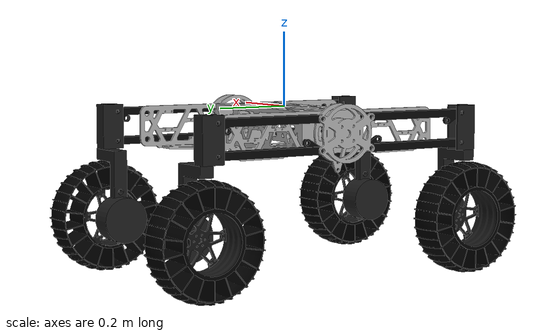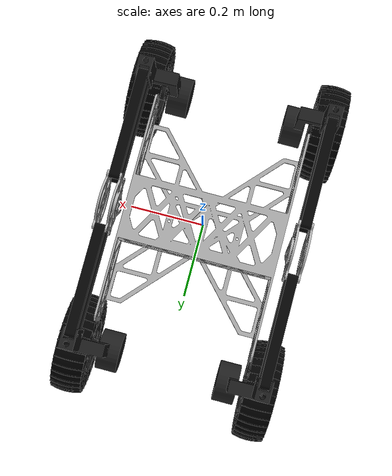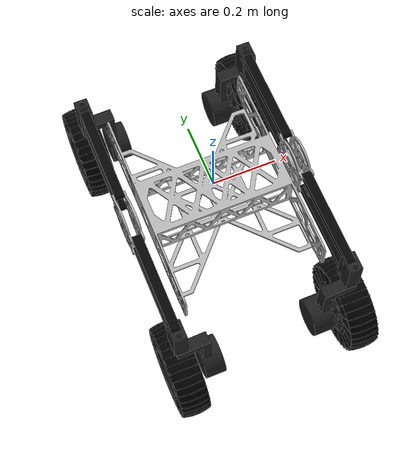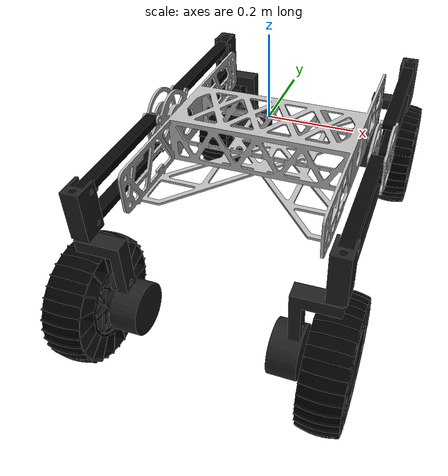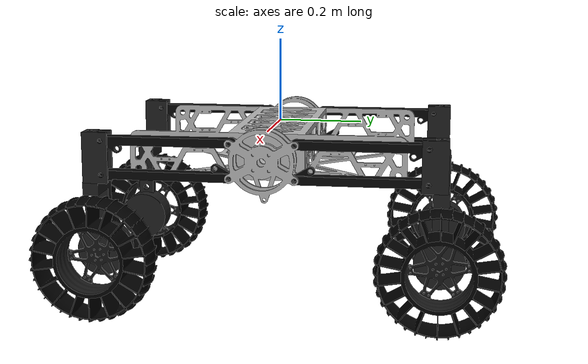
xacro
<robot xmlns:xacro="http://www.ros.org/wiki/xacro" name="robot_name">
    <link name="base_link" />

    <xacro:include filename="$(find rover_description)/urdf/rover_movement/rover_movement.xacro"/>

    <joint name="base_link_to_chassis" type="fixed">
        <parent link="base_link"/>
        <child link="chassis_link"/>
        <origin xyz="0 0 ${-chassis_height/2}" rpy="0 0 0"/>
    </joint>
</robot>

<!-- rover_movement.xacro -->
<robot name="rover_base"
    xmlns:xacro="http://ros.org/wiki/xacro">

    <xacro:include filename="$(find rover_description)/urdf/rover_movement/utils/params.xacro"/>
    <xacro:include filename="$(find rover_description)/urdf/rover_movement/utils/macros.xacro"/>

    <link name="chassis_link">
        <visual>
            <origin rpy="0 0 0" xyz="0 0 0"/>
            <geometry>
                <mesh filename="package://rover_description/urdf/rover_movement/meshes/chassis.dae"/>
            </geometry>
        </visual>
    </link>

    <xacro:swaypivot name="l" lr="${left}" />
    <xacro:swaypivot name="r" lr="${right}" />

    <joint name="l_swaypivot_joint" type="revolute">
        <parent link="chassis_link"/>
        <child link="l_swaypivot_link"/>
        <origin xyz="${1*(chassis_width/2 + sway_pivot_depth/2 + sway_pivot_gap)} 0.0 0.0" rpy="0 0 0"/>
        <axis xyz="1.0 0.0 0.0"/>
        <limit effort="1000" velocity="1000" lower="${-pi * 0.25}" upper="${pi * 0.25}"/>
    </joint>

    <joint name="r_swaypivot_joint" type="revolute">
        <parent link="chassis_link"/>
        <child link="r_swaypivot_link"/>
        <origin xyz="${-1*(chassis_width/2 + sway_pivot_depth/2 + sway_pivot_gap)} 0.0 0.0" rpy="0 0 0"/>
        <axis xyz="1.0 0.0 0.0"/>
        <limit effort="1000" velocity="1000" lower="${-pi * 0.25}" upper="${pi * 0.25}"/>
        <mimic joint="l_swaypivot_joint" multiplier="-1" offset="0"/>
    </joint>

    <xacro:leg sway="r" name="fr" fb="${front}" lr="${right}" tb="${bottom}"/>
    <xacro:leg sway="l" name="fl" fb="${front}" lr="${left}" tb="${bottom}"/>
    <xacro:leg sway="r" name="br" fb="${back}" lr="${right}" tb="${bottom}"/>
    <xacro:leg sway="l" name="bl" fb="${back}" lr="${left}" tb="${bottom}"/>

</robot>

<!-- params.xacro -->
<robot xmlns:xacro="http://www.ros.org/wiki/xacro">

    <xacro:property name="chassis_width" value="0.442"/>
    <xacro:property name="chassis_length" value="0.650"/>
    <xacro:property name="chassis_height" value="0.11"/>
    <xacro:property name="chassis_mass" value="30"/>

    <xacro:property name="sway_pivot_depth" value="0.042"/>
    <xacro:property name="sway_pivot_gap" value="0.030"/>
    <xacro:property name="sway_pivot_vert_sep" value="0.080"/>
    <xacro:property name="sway_pivot_hor_sep" value="0.150"/>

    <xacro:property name="leg_radius" value="0.015"/>
    <xacro:property name="leg_length" value="0.300"/>
    <xacro:property name="leg_rotation" value="0.400"/>
    <xacro:property name="leg_mass" value="0.400"/>

    <xacro:property name="steer_hub_width" value="0.028"/>
    <xacro:property name="steer_hub_height" value="0.080"/>
    <xacro:property name="steer_hub_depth" value="0.042"/>

    <xacro:property name="steer_link_width" value="0.030"/>
    <xacro:property name="steer_link_height" value="0.1835"/>
    <xacro:property name="steer_link_depth" value="0.090"/>

    <xacro:property name="lower_leg_radius" value="0.03"/>
    <xacro:property name="lower_leg_length" value="0.1"/>
    <xacro:property name="lower_leg_rotation" value="0.4"/>
    <xacro:property name="lower_leg_mass" value="0.4"/>

    <xacro:property name="wheel_radius" value="0.15"/>
    <xacro:property name="wheel_depth" value="0.090"/>
    <xacro:property name="wheel_axial_offset" value="${-wheel_depth/2}"/>
    <xacro:property name="wheel_mass" value="1"/>

    <!-- (-1) for wheel in, (1) for wheel out -->
    <xacro:property name="wheel_config" value="-1"/>

    <xacro:property name="front" value="1"/>
    <xacro:property name="back" value="-1"/>
    <xacro:property name="right" value="1"/>
    <xacro:property name="left" value="-1"/>
    <xacro:property name="top" value="1"/>
    <xacro:property name="bottom" value="-1"/>
</robot>

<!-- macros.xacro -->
<robot xmlns:xacro="http://www.ros.org/wiki/xacro">

    <xacro:macro name="swaypivot" params="name lr">
        <link name="${name}_swaypivot_link">
            <visual>
                <geometry>
                    <mesh filename="package://rover_description/urdf/rover_movement/meshes/sway_pivot.dae"/>
                </geometry>
                <origin xyz="0 0 0" rpy="0 0 ${lr*pi/2}"/>
            </visual>
        </link>

    </xacro:macro>

    <xacro:macro name="leg" params="sway name fb lr tb">
        <link name="${name}_leg_link">
            <visual>
                <geometry>
                    <mesh filename="package://rover_description/urdf/rover_movement/meshes/bottom_link.dae"/>
                </geometry>
                <origin xyz="0 0 0" rpy="0 0 ${fb*pi/2}"/>
            </visual>
        </link>

        <joint name="${sway}_swaypivot_${name}_upper_leg_joint" type="revolute">
            <parent link="${sway}_swaypivot_link"/>
            <child link="${name}_leg_link"/>
            <origin xyz="0 ${fb*sway_pivot_hor_sep/2} ${tb*sway_pivot_vert_sep/2}" rpy="${-fb*pi*0.5} 0 0"/>
            <axis xyz="${-fb*1.0} 0 0"/>
            <!-- TODO: set variables to these limits -->
            <limit effort="1000" velocity="1000" lower="-0.2" upper="0.65"/>
        </joint>

        <link name="${name}_upper_leg_mimic_link">
            <visual>
                <geometry>
                    <mesh filename="package://rover_description/urdf/rover_movement/meshes/top_link.dae"/>
                </geometry>
                <origin xyz="0 0 0" rpy="0 0 ${fb*pi/2}"/>
            </visual>
        </link>

        <joint name="${sway}_swaypivot_${name}_upper_leg_mimic_joint" type="revolute">
            <parent link="${sway}_swaypivot_link"/>
            <child link="${name}_upper_leg_mimic_link"/>
            <origin xyz="0 ${fb*sway_pivot_hor_sep/2} ${-tb*sway_pivot_vert_sep/2}" rpy="${-fb*pi*0.5} 0 0"/>
            <axis xyz="${-fb*1.0} 0 0"/>
            <!-- dont change these limits -->
            <limit effort="1000" velocity="1000" lower="-10" upper="10"/>
            <mimic joint="${sway}_swaypivot_${name}_upper_leg_joint" multiplier="1" offset="0"/>
        </joint>

        <link name="${name}_steer_hub_link">
            <visual>
                <geometry>
                    <mesh filename="package://rover_description/urdf/rover_movement/meshes/parallel_link.dae"/>
                </geometry>
                <origin xyz="0 0 0" rpy="0 0 ${fb*pi/2}"/>
                <material name="black"/>
            </visual>
        </link>

        <joint name="${name}_leg_to_${name}_steer_hub_joint" type="revolute">
            <parent link="${name}_leg_link"/>
            <child link="${name}_steer_hub_link"/>
            <origin xyz="0 0 ${leg_length}" rpy="${-fb*pi * 0.5} 0 0"/>
            <axis xyz="${-fb*1.0} 0 0"/>
            <!-- dont change these limits -->
            <limit effort="1000" velocity="1000" lower="-10" upper="10"/>
            <mimic joint="${sway}_swaypivot_${name}_upper_leg_joint" multiplier="-1" offset="0"/>
        </joint>

        <link name="${name}_steer_link">
            <visual>
                <geometry>
                    <mesh filename="package://rover_description/urdf/rover_movement/meshes/steer_hub.dae"/>
                </geometry>
                <origin xyz="0 0 0" rpy="0 ${pi} ${wheel_config*lr*pi/2}"/>
                <material name="black"/>
            </visual>
        </link>

        <joint name="${name}_leg_to_${name}_steer_joint" type="revolute">
            <parent link="${name}_steer_hub_link"/>
            <child link="${name}_steer_link"/>
            <origin xyz="0 ${-fb*0.029} 0.02" rpy="0 0 0"/>
            <axis xyz="0 0 ${fb*lr*1.0}"/>
            <!-- dont change these limits -->
            <limit effort="1000" velocity="1000" lower="${-2*pi}" upper="${2*pi}"/>
        </joint>

        <link name="${name}_wheel_link">
            <visual>
                <geometry>
                    <mesh filename="package://rover_description/urdf/rover_movement/meshes/wheel.dae"/>
                </geometry>
                <origin xyz="0 0 0" rpy="0 0 ${wheel_config*lr*pi/2}"/>
            </visual>
            <collision>
                <geometry>
                    <cylinder length="${wheel_depth}" radius="${wheel_radius}"/>
                </geometry>
                <origin xyz="${lr*wheel_axial_offset} 0 0" rpy="0 ${wheel_config*lr*pi/2} 0"/>
            </collision>
        </link>

        <joint name="${name}_wheel_joint" type="continuous">
            <origin xyz="${wheel_config*lr*wheel_axial_offset} 0 ${steer_link_height}" rpy="0 0 0"/>
            <parent link="${name}_steer_link"/>
            <child link="${name}_wheel_link"/>
        </joint>

        <transmission name="${name}_wheel_trans" type="SimpleTransmission">
            <type>transmission_interface/SimpleTransmission</type>
            <actuator name="${name}_wheel_motor">
                <mechanicalReduction>1</mechanicalReduction>
            </actuator>
            <joint name="${name}_wheel_joint">
                <hardwareInterface>VelocityJointInterface</hardwareInterface>
            </joint>
        </transmission>

        <transmission name="${name}_steering_trans" type="SimpleTransmission">
            <type>transmission_interface/SimpleTransmission</type>
            <actuator name="${name}_steering_motor">
                <hardwareInterface>PositionJointInterface</hardwareInterface>
                <mechanicalReduction>1</mechanicalReduction>
            </actuator>
            <joint name="${name}_leg_to_${name}_steer_joint">
                <hardwareInterface>PositionJointInterface</hardwareInterface>
            </joint>
        </transmission>

    </xacro:macro>

</robot>
